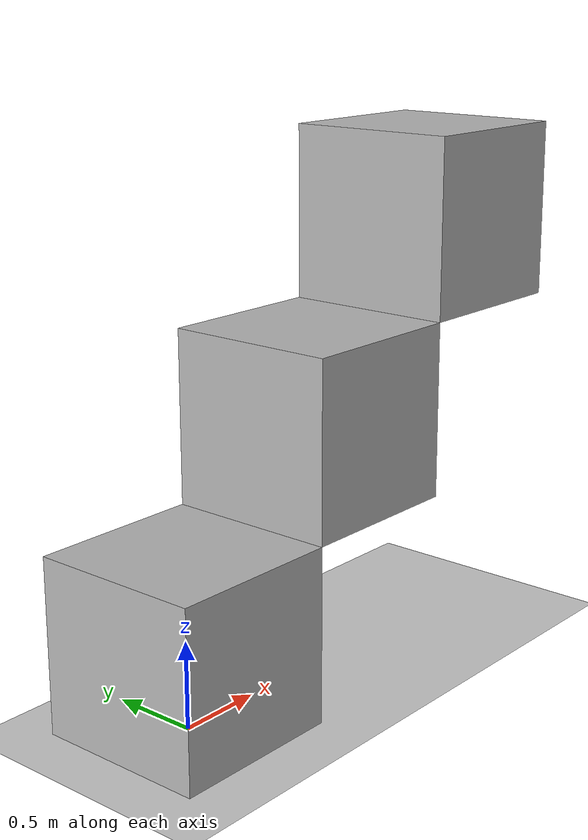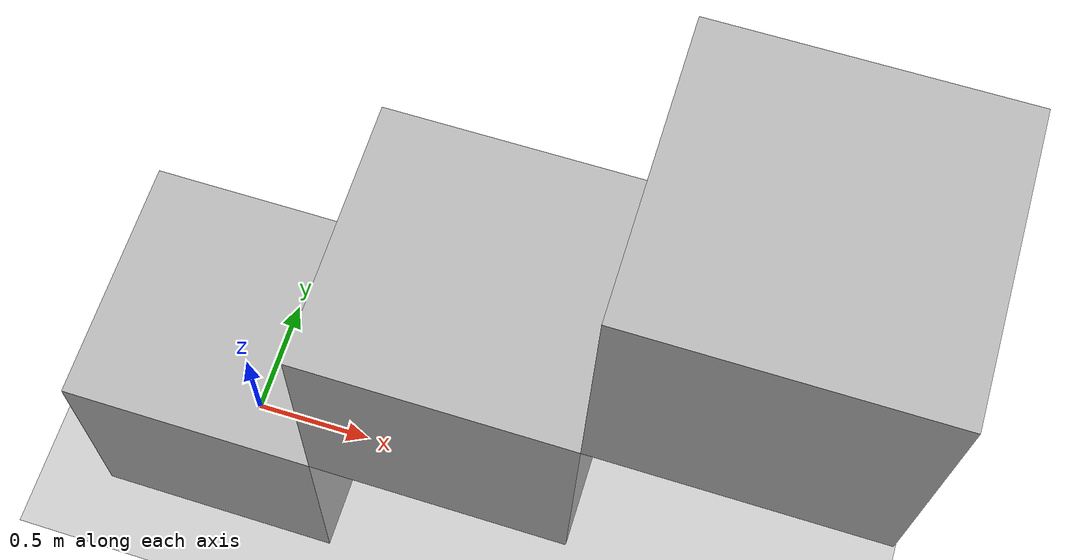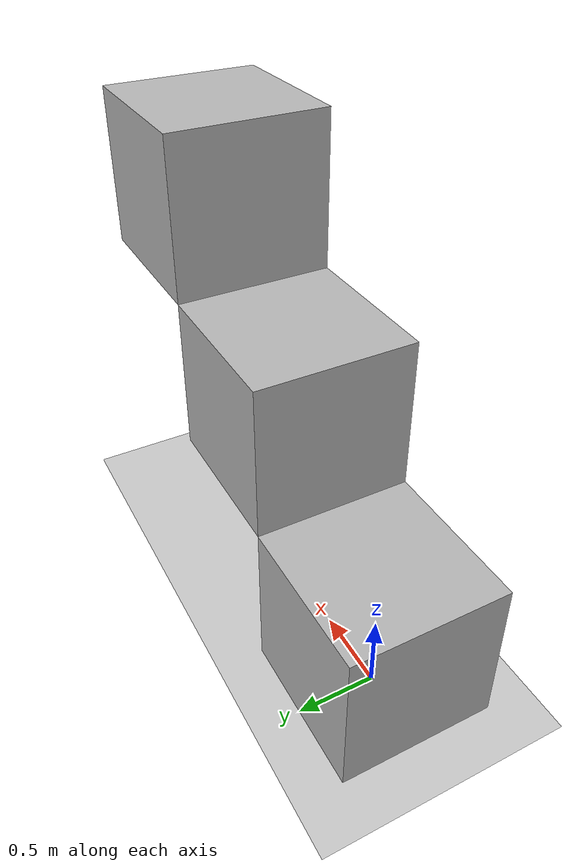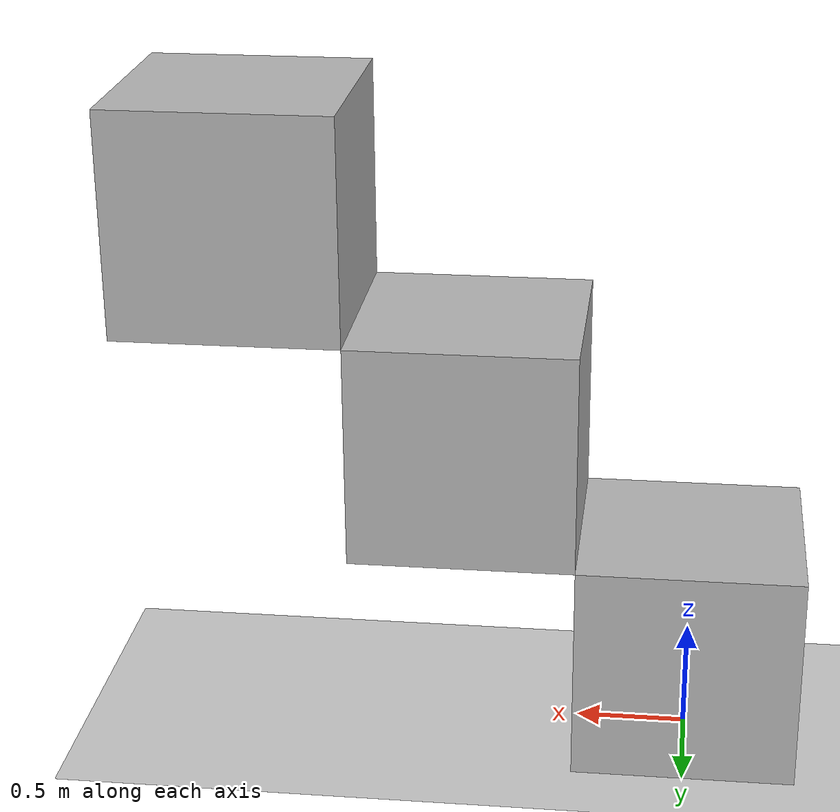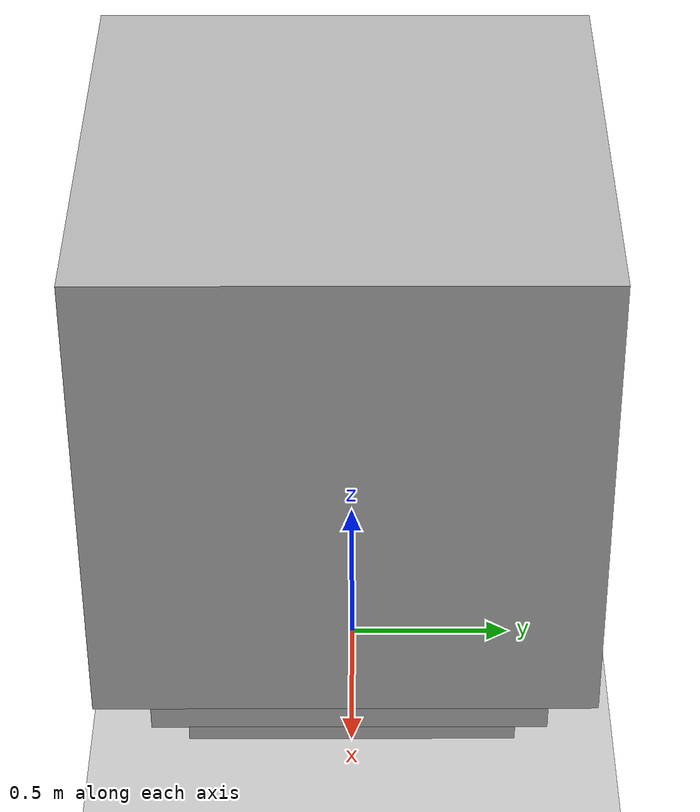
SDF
<?xml version="1.0" ?>
<sdf version="1.4">
    <world name="default">
        <plugin name="SimpleWorldController" filename="libSimpleWorldController.so" />
        <!-- Ground Plane -->
        <include>
            <uri>model://ground_plane</uri>
        </include>
        <include>
            <uri>model://sun</uri>
        </include>
        <model name="box">
            <pose>0 0 0 0 0 0</pose>
            <link name="link">
                <pose>0 0 0.5 0 0 0</pose>
                <collision name="collision">
                    <geometry>
                        <box>
                            <size>1 1 1</size>
                        </box>
                    </geometry>
                </collision>
                <visual name="visual">
                    <geometry>
                        <box>
                            <size>1 1 1</size>
                        </box>
                    </geometry>
                </visual>
                <inertial>
                    <mass>100.0</mass>
                    <pose>0 0 0 0 0 0</pose>
                    <inertia>
                        <ixx>0.1</ixx>
                        <iyy>0.1</iyy>
                        <izz>0.1</izz>
                        <ixy>0.1</ixy>
                        <ixz>0.1</ixz>
                        <iyz>0.1</iyz>
                    </inertia>
                </inertial>
            </link>
            <link name="link2">
                <pose>1.0 0 1.5 0 0 0</pose>
                <collision name="collision">
                    <geometry>
                        <box>
                            <size>1 1 1</size>
                        </box>
                    </geometry>
                </collision>
                <visual name="visual">
                    <geometry>
                        <box>
                            <size>1 1 1</size>
                        </box>
                    </geometry>
                </visual>
                <inertial>
                    <mass>5.0</mass>
                    <pose>0 0 0 0 0 0</pose>
                    <inertia>
                        <ixx>0.1</ixx>
                        <iyy>0.1</iyy>
                        <izz>0.1</izz>
                        <ixy>0.1</ixy>
                        <ixz>0.1</ixz>
                        <iyz>0.1</iyz>
                    </inertia>
                </inertial>
            </link>
            <link name="link3">
                <pose>2.0 0 2.5 0 0 0</pose>
                <collision name="collision">
                    <geometry>
                        <box>
                            <size>1 1 1</size>
                        </box>
                    </geometry>
                </collision>
                <visual name="visual">
                    <geometry>
                        <box>
                            <size>1 1 1</size>
                        </box>
                    </geometry>
                </visual>
                <inertial>
                    <mass>1.0</mass>
                    <pose>0 0 0 0 0 0</pose>
                    <inertia>
                        <ixx>0.1</ixx>
                        <iyy>0.1</iyy>
                        <izz>0.1</izz>
                        <ixy>0.1</ixy>
                        <ixz>0.1</ixz>
                        <iyz>0.1</iyz>
                    </inertia>
                </inertial>
            </link>
            <joint name="joint1" type="revolute">
                <pose>-0.5 0 -0.5 0 0 0</pose>
                <physics>
                    <ode>
                        <provide_feedback>true</provide_feedback>
                    </ode>
                </physics>
                <axis>
                    <xyz>0 1 0</xyz>
                </axis>
                <parent>
                    <link_name>link</link_name>
                </parent>
                <child>
                    <link_name>link2</link_name>
                </child>
            </joint>
            <joint name="joint2" type="revolute">
                <pose>-0.5 0 -0.5 0 0 0</pose>
                <physics>
                    <ode>
                        <provide_feedback>true</provide_feedback>
                    </ode>
                </physics>
                <axis>
                    <xyz>0 1 0</xyz>
                </axis>
                <parent>
                    <link_name>link2</link_name>
                </parent>
                <child>
                    <link_name>link3</link_name>
                </child>
            </joint>
            <plugin name="GazeboStateCommunicator" filename="libGazeboStateCommunicator.so" imulink="imu_link" />
        </model>
        <physics type="ode">
            <gravity>0.000000 0.000000 -9.800000</gravity>
            <ode>
                <solver>
                    <iters>1500</iters>
                </solver>
            </ode>
            <real_time_update_rate>10000.000000</real_time_update_rate>
            <max_step_size>0.0001</max_step_size>
        </physics>
    </world>
</sdf>
